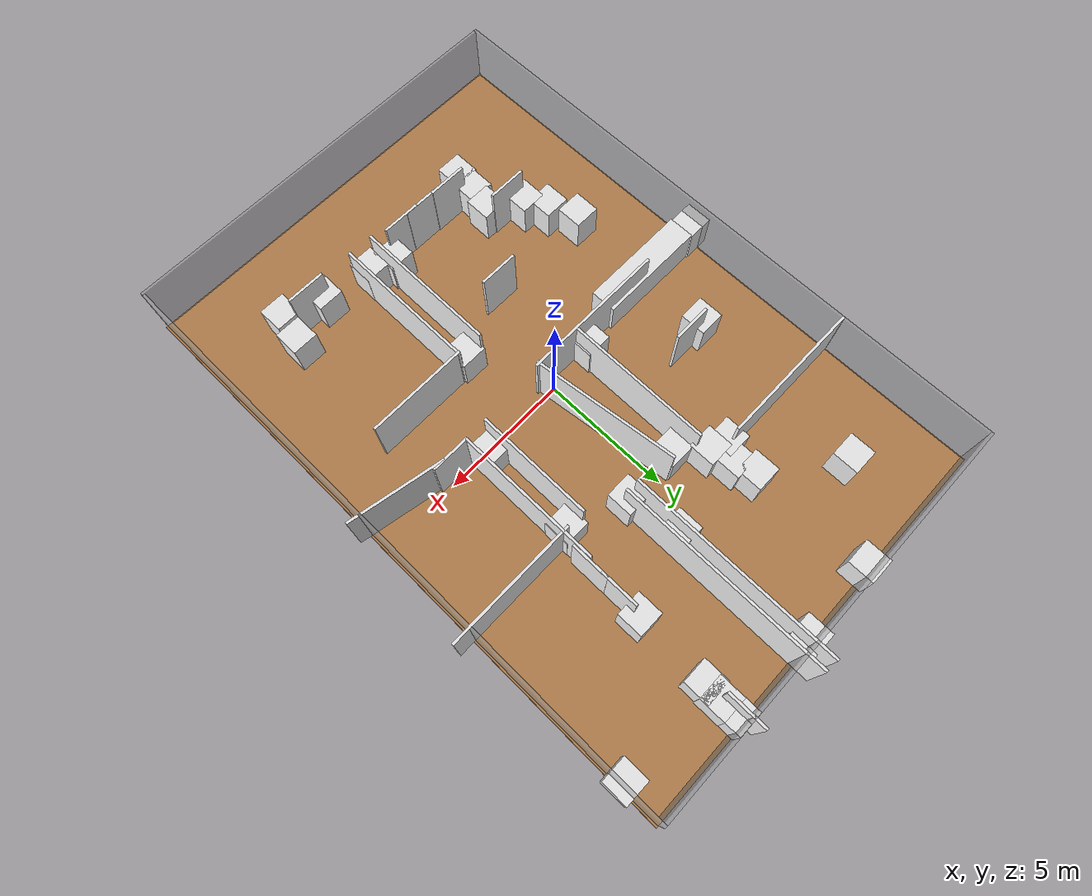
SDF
<sdf version="1.6">
 <world name="default">
  <light name="sun" type="directional">
   <pose>0 0 10 0 -0 0</pose>
   <diffuse>0.8 0.8 0.8 1</diffuse>
   <specular>0.2 0.2 0.2 1</specular>
   <attenuation>
    <range>1000</range>
    <constant>0.9</constant>
    <linear>0.01</linear>
    <quadratic>0.001</quadratic>
   </attenuation>
   <direction>-0.5 0.1 -0.9</direction>
  </light>
  <physics name="default_physics" default="0" type="ode">
   <real_time_update_rate>1000</real_time_update_rate>
   <max_step_size>0.001</max_step_size>
   <real_time_factor>1</real_time_factor>
   <ode>
    <solver>
     <type>quick</type>
     <iters>150</iters>
     <precon_iters>0</precon_iters>
     <sor>1.4</sor>
     <use_dynamic_moi_rescaling>1</use_dynamic_moi_rescaling>
    </solver>
    <constraints>
     <cfm>1e-05</cfm>
     <erp>0.2</erp>
     <contact_max_correcting_vel>2000</contact_max_correcting_vel>
     <contact_surface_layer>0.01</contact_surface_layer>
    </constraints>
   </ode>
  </physics>
  <model name="box_1">
   <pose>0.05 -12.05 1.25 0 -0 0</pose>
   <static>1</static>
   <link name="link">
    <collision name="collision"><geometry><box><size>16.1 0.1 2.5</size></box></geometry></collision>
    <visual name="visual">
     <geometry><box><size>16.1 0.1 2.5</size></box></geometry>
     <material>
      <script><name>Gazebo/GreyTransparent</name><uri>file://media/materials/scripts/gazebo.material</uri></script>
     </material>
    </visual>
   </link>
  </model>
  <model name="box_2">
   <pose>8.05 0.05 1.25 0 -0 0</pose>
   <static>1</static>
   <link name="link">
    <collision name="collision"><geometry><box><size>0.1 24.1 2.5</size></box></geometry></collision>
    <visual name="visual">
     <geometry><box><size>0.1 24.1 2.5</size></box></geometry>
     <material>
      <script><name>Gazebo/GreyTransparent</name><uri>file://media/materials/scripts/gazebo.material</uri></script>
     </material>
    </visual>
   </link>
  </model>
  <model name="box_3">
   <pose>-0.05 12.05 1.25 0 -0 0</pose>
   <static>1</static>
   <link name="link">
    <collision name="collision"><geometry><box><size>16.1 0.1 2.5</size></box></geometry></collision>
    <visual name="visual">
     <geometry><box><size>16.1 0.1 2.5</size></box></geometry>
     <material>
      <script><name>Gazebo/GreyTransparent</name><uri>file://media/materials/scripts/gazebo.material</uri></script>
     </material>
    </visual>
   </link>
  </model>
  <model name="box_4">
   <pose>-8.05 -0.05 1.25 0 -0 0</pose>
   <static>1</static>
   <link name="link">
    <collision name="collision"><geometry><box><size>0.1 24.1 2.5</size></box></geometry></collision>
    <visual name="visual">
     <geometry><box><size>0.1 24.1 2.5</size></box></geometry>
     <material>
      <script><name>Gazebo/GreyTransparent</name><uri>file://media/materials/scripts/gazebo.material</uri></script>
     </material>
    </visual>
   </link>
  </model>
  <model name="box_5">
   <pose>0.075723 0.05653 -0.05 0 -0 0</pose>
   <static>1</static>
   <link name="link">
    <collision name="collision"><geometry><box><size>16.2 24.2 0.1</size></box></geometry></collision>
    <visual name="visual">
     <geometry><box><size>16.2 24.2 0.1</size></box></geometry>
     <material>
      <script><name>Gazebo/WoodFloor</name><uri>file://media/materials/scripts/gazebo.material</uri></script>
     </material>
    </visual>
   </link>
  </model>
  <gravity>0 0 -9.8066</gravity>
  <magnetic_field>6e-06 2.3e-05 -4.2e-05</magnetic_field>
  <atmosphere type="adiabatic"/>
  <scene><ambient>0.4 0.4 0.4 1</ambient><background>0.7 0.7 0.7 1</background><shadows>1</shadows></scene>
  <spherical_coordinates>
   <surface_model>EARTH_WGS84</surface_model>
   <latitude_deg>0</latitude_deg>
   <longitude_deg>0</longitude_deg>
   <elevation>0</elevation>
   <heading_deg>0</heading_deg>
  </spherical_coordinates>
  <model name="box_8_clone">
   <pose>6.73576 -0.524414 1.25 0 0 -0.191358</pose>
   <static>1</static>
   <link name="link">
    <collision name="collision"><geometry><box><size>3.67087 0.1 2.5</size></box></geometry></collision>
    <visual name="visual">
     <geometry><box><size>3.67087 0.1 2.5</size></box></geometry>
     <material>
      <script><name>Gazebo/White</name><uri>file://media/materials/scripts/gazebo.material</uri></script>
     </material>
    </visual>
   </link>
  </model>
  <model name="box_9_clone_clone_0">
   <pose>-3.46298 -8.44795 0.75 0 -0 0</pose>
   <static>1</static>
   <link name="link">
    <collision name="collision"><geometry><box><size>1 1 1.5</size></box></geometry></collision>
    <visual name="visual">
     <geometry><box><size>1 1 1.5</size></box></geometry>
     <material>
      <script><name>Gazebo/White</name><uri>file://media/materials/scripts/gazebo.material</uri></script>
     </material>
    </visual>
   </link>
  </model>
  <model name="box_9_clone_clone_1">
   <pose>-3.40186 -7.56359 0.75 0 -0 0</pose>
   <static>1</static>
   <link name="link">
    <collision name="collision"><geometry><box><size>1 1 1.5</size></box></geometry></collision>
    <visual name="visual">
     <geometry><box><size>1 1 1.5</size></box></geometry>
     <material>
      <script><name>Gazebo/White</name><uri>file://media/materials/scripts/gazebo.material</uri></script>
     </material>
    </visual>
   </link>
  </model>
  <model name="box_9_clone_clone_2">
   <pose>-3.23885 -6.64819 0.75 0 -0 0</pose>
   <static>1</static>
   <link name="link">
    <collision name="collision"><geometry><box><size>1 1 1.5</size></box></geometry></collision>
    <visual name="visual">
     <geometry><box><size>1 1 1.5</size></box></geometry>
     <material>
      <script><name>Gazebo/White</name><uri>file://media/materials/scripts/gazebo.material</uri></script>
     </material>
    </visual>
   </link>
  </model>
  <model name="box_9_clone_clone_3">
   <pose>5.04068 -8.64867 0.75 0 -0 0</pose>
   <static>1</static>
   <link name="link">
    <collision name="collision"><geometry><box><size>1 1 1.5</size></box></geometry></collision>
    <visual name="visual">
     <geometry><box><size>1 1 1.5</size></box></geometry>
     <material>
      <script><name>Gazebo/White</name><uri>file://media/materials/scripts/gazebo.material</uri></script>
     </material>
    </visual>
   </link>
  </model>
  <model name="box_9_clone_clone_4">
   <pose>5.24363 -7.53941 0.75 0 -0 0</pose>
   <static>1</static>
   <link name="link">
    <collision name="collision"><geometry><box><size>1 1 1.5</size></box></geometry></collision>
    <visual name="visual">
     <geometry><box><size>1 1 1.5</size></box></geometry>
     <material>
      <script><name>Gazebo/White</name><uri>file://media/materials/scripts/gazebo.material</uri></script>
     </material>
    </visual>
   </link>
  </model>
  <model name="box_9_clone_clone_7">
   <pose>-2.40815 5.82285 0.75 0 -0 0</pose>
   <static>1</static>
   <link name="link">
    <collision name="collision"><geometry><box><size>1 1 1.5</size></box></geometry></collision>
    <visual name="visual">
     <geometry><box><size>1 1 1.5</size></box></geometry>
     <material>
      <script><name>Gazebo/White</name><uri>file://media/materials/scripts/gazebo.material</uri></script>
     </material>
    </visual>
   </link>
  </model>
  <model name="box_9_clone_clone_8">
   <pose>-2 6.49358 0.75 0 -0 0</pose>
   <static>1</static>
   <link name="link">
    <collision name="collision"><geometry><box><size>1 1 1.5</size></box></geometry></collision>
    <visual name="visual">
     <geometry><box><size>1 1 1.5</size></box></geometry>
     <material>
      <script><name>Gazebo/White</name><uri>file://media/materials/scripts/gazebo.material</uri></script>
     </material>
    </visual>
   </link>
  </model>
  <model name="box_9_clone_clone_9">
   <pose>-2.19565 7.27454 0.75 0 -0 0</pose>
   <static>1</static>
   <link name="link">
    <collision name="collision"><geometry><box><size>1 1 1.5</size></box></geometry></collision>
    <visual name="visual">
     <geometry><box><size>1 1 1.5</size></box></geometry>
     <material>
      <script><name>Gazebo/White</name><uri>file://media/materials/scripts/gazebo.material</uri></script>
     </material>
    </visual>
   </link>
  </model>
  <model name="box_8_clone_clone_13_clone_clone_clone_clone_0">
   <pose>3.88443 -2.57138 1.25 0 -0 0</pose>
   <static>1</static>
   <link name="link">
    <collision name="collision"><geometry><box><size>3.86211 0.1 2.5</size></box></geometry></collision>
    <visual name="visual">
     <geometry><box><size>3.86211 0.1 2.5</size></box></geometry>
     <material>
      <script><name>Gazebo/White</name><uri>file://media/materials/scripts/gazebo.material</uri></script>
     </material>
    </visual>
   </link>
  </model>
  <model name="box_8_clone_clone_11_clone">
   <pose>-1.1954 -3.87817 1.25 0 -0 0</pose>
   <static>1</static>
   <link name="link">
    <collision name="collision"><geometry><box><size>1.5 0.1 2.5</size></box></geometry></collision>
    <visual name="visual">
     <geometry><box><size>1.5 0.1 2.5</size></box></geometry>
     <material>
      <script><name>Gazebo/White</name><uri>file://media/materials/scripts/gazebo.material</uri></script>
     </material>
    </visual>
   </link>
  </model>
  <model name="box_6_clone_clone_3">
   <pose>4.07127 5.47003 1.25 0 -0 0</pose>
   <static>1</static>
   <link name="link">
    <collision name="collision"><geometry><box><size>0.1 1.5 2.5</size></box></geometry></collision>
    <visual name="visual">
     <geometry><box><size>0.1 1.5 2.5</size></box></geometry>
     <material>
      <script><name>Gazebo/White</name><uri>file://media/materials/scripts/gazebo.material</uri></script>
     </material>
    </visual>
   </link>
  </model>
  <model name="box_6_clone_clone_4">
   <pose>4.06892 6.67693 1.25 0 -0 0</pose>
   <static>1</static>
   <link name="link">
    <collision name="collision"><geometry><box><size>0.1 1.5 2.5</size></box></geometry></collision>
    <visual name="visual">
     <geometry><box><size>0.1 1.5 2.5</size></box></geometry>
     <material>
      <script><name>Gazebo/White</name><uri>file://media/materials/scripts/gazebo.material</uri></script>
     </material>
    </visual>
   </link>
  </model>
  <model name="box_8_clone_clone_4_clone_2">
   <pose>-4.30694 2.39293 1.25 0 -0 0</pose>
   <static>1</static>
   <link name="link">
    <collision name="collision"><geometry><box><size>1.5 0.1 2.5</size></box></geometry></collision>
    <visual name="visual">
     <geometry><box><size>1.5 0.1 2.5</size></box></geometry>
     <material>
      <script><name>Gazebo/White</name><uri>file://media/materials/scripts/gazebo.material</uri></script>
     </material>
    </visual>
   </link>
  </model>
  <model name="box_9_clone_clone_7_clone">
   <pose>-5.21616 2.23106 0.75 0 -0 0</pose>
   <static>1</static>
   <link name="link">
    <collision name="collision"><geometry><box><size>1 1 1.5</size></box></geometry></collision>
    <visual name="visual">
     <geometry><box><size>1 1 1.5</size></box></geometry>
     <material>
      <script><name>Gazebo/White</name><uri>file://media/materials/scripts/gazebo.material</uri></script>
     </material>
    </visual>
   </link>
  </model>
  <model name="box_9_clone_clone_7_clone_clone">
   <pose>-7.89766 -0.627489 0.75 0 -0 0</pose>
   <static>1</static>
   <link name="link">
    <collision name="collision"><geometry><box><size>1 1 1.5</size></box></geometry></collision>
    <visual name="visual">
     <geometry><box><size>1 1 1.5</size></box></geometry>
     <material>
      <script><name>Gazebo/White</name><uri>file://media/materials/scripts/gazebo.material</uri></script>
     </material>
    </visual>
   </link>
  </model>
  <model name="box_9_clone_clone_7_clone_clone_3">
   <pose>-5.3619 -3.95424 0.75 0 -0 0</pose>
   <static>1</static>
   <link name="link">
    <collision name="collision"><geometry><box><size>1 1 1.5</size></box></geometry></collision>
    <visual name="visual">
     <geometry><box><size>1 1 1.5</size></box></geometry>
     <material>
      <script><name>Gazebo/White</name><uri>file://media/materials/scripts/gazebo.material</uri></script>
     </material>
    </visual>
   </link>
  </model>
  <model name="box_9_clone_clone_7_clone_clone_4">
   <pose>-4.89443 -5.04481 0.75 0 -0 0</pose>
   <static>1</static>
   <link name="link">
    <collision name="collision"><geometry><box><size>1 1 1.5</size></box></geometry></collision>
    <visual name="visual">
     <geometry><box><size>1 1 1.5</size></box></geometry>
     <material>
      <script><name>Gazebo/White</name><uri>file://media/materials/scripts/gazebo.material</uri></script>
     </material>
    </visual>
   </link>
  </model>
  <model name="box_9_clone_clone_7_clone_clone_5">
   <pose>-4.42171 -5.82067 0.75 0 -0 0</pose>
   <static>1</static>
   <link name="link">
    <collision name="collision"><geometry><box><size>1 1 1.5</size></box></geometry></collision>
    <visual name="visual">
     <geometry><box><size>1 1 1.5</size></box></geometry>
     <material>
      <script><name>Gazebo/White</name><uri>file://media/materials/scripts/gazebo.material</uri></script>
     </material>
    </visual>
   </link>
  </model>
  <model name="box_8_clone_clone_4_clone_2_clone">
   <pose>-3.89284 -6.16269 1.25 0 -0 0</pose>
   <static>1</static>
   <link name="link">
    <collision name="collision"><geometry><box><size>1.5 0.1 2.5</size></box></geometry></collision>
    <visual name="visual">
     <geometry><box><size>1.5 0.1 2.5</size></box></geometry>
     <material>
      <script><name>Gazebo/White</name><uri>file://media/materials/scripts/gazebo.material</uri></script>
     </material>
    </visual>
   </link>
  </model>
  <model name="box_8_clone_clone_4_clone_0_clone">
   <pose>3.96979 -8.18121 1.25 0 -0 0</pose>
   <static>1</static>
   <link name="link">
    <collision name="collision"><geometry><box><size>1.5 0.1 2.5</size></box></geometry></collision>
    <visual name="visual">
     <geometry><box><size>1.5 0.1 2.5</size></box></geometry>
     <material>
      <script><name>Gazebo/White</name><uri>file://media/materials/scripts/gazebo.material</uri></script>
     </material>
    </visual>
   </link>
  </model>
  <model name="box_8_clone_clone_4_clone_0_clone_0">
   <pose>-2.46431 -7.82356 1.25 0 -0 0</pose>
   <static>1</static>
   <link name="link">
    <collision name="collision"><geometry><box><size>1.5 0.1 2.5</size></box></geometry></collision>
    <visual name="visual">
     <geometry><box><size>1.5 0.1 2.5</size></box></geometry>
     <material>
      <script><name>Gazebo/White</name><uri>file://media/materials/scripts/gazebo.material</uri></script>
     </material>
    </visual>
   </link>
  </model>
  <model name="box_8_clone_clone_4_clone_0_clone_1">
   <pose>-1.22633 -7.84729 1.25 0 -0 0</pose>
   <static>1</static>
   <link name="link">
    <collision name="collision"><geometry><box><size>1.5 0.1 2.5</size></box></geometry></collision>
    <visual name="visual">
     <geometry><box><size>1.5 0.1 2.5</size></box></geometry>
     <material>
      <script><name>Gazebo/White</name><uri>file://media/materials/scripts/gazebo.material</uri></script>
     </material>
    </visual>
   </link>
  </model>
  <model name="box_8_clone_clone_4_clone_0_clone_2">
   <pose>-0.238809 -7.86091 1.25 0 -0 0</pose>
   <static>1</static>
   <link name="link">
    <collision name="collision"><geometry><box><size>1.5 0.1 2.5</size></box></geometry></collision>
    <visual name="visual">
     <geometry><box><size>1.5 0.1 2.5</size></box></geometry>
     <material>
      <script><name>Gazebo/White</name><uri>file://media/materials/scripts/gazebo.material</uri></script>
     </material>
    </visual>
   </link>
  </model>
  <model name="box_9_clone_clone_5_clone_2_clone_0">
   <pose>4.02304 7.59814 0.75 0 -0 0</pose>
   <static>1</static>
   <link name="link">
    <collision name="collision"><geometry><box><size>1 1 1.5</size></box></geometry></collision>
    <visual name="visual">
     <geometry><box><size>1 1 1.5</size></box></geometry>
     <material>
      <script><name>Gazebo/White</name><uri>file://media/materials/scripts/gazebo.material</uri></script>
     </material>
    </visual>
   </link>
  </model>
  <model name="box_9_clone_clone_5_clone_2_clone_0_clone">
   <pose>0.652057 -7.5435 0.75 0 -0 0</pose>
   <static>1</static>
   <link name="link">
    <collision name="collision"><geometry><box><size>1 1 1.5</size></box></geometry></collision>
    <visual name="visual">
     <geometry><box><size>1 1 1.5</size></box></geometry>
     <material>
      <script><name>Gazebo/White</name><uri>file://media/materials/scripts/gazebo.material</uri></script>
     </material>
    </visual>
   </link>
  </model>
  <model name="box_9_clone_clone_5_clone_2_clone_0_clone_0">
   <pose>3.49636 -8.18539 0.75 0 -0 0</pose>
   <static>1</static>
   <link name="link">
    <collision name="collision"><geometry><box><size>1 1 1.5</size></box></geometry></collision>
    <visual name="visual">
     <geometry><box><size>1 1 1.5</size></box></geometry>
     <material>
      <script><name>Gazebo/White</name><uri>file://media/materials/scripts/gazebo.material</uri></script>
     </material>
    </visual>
   </link>
  </model>
  <model name="box_6_clone_clone_4_clone">
   <pose>4.07842 11.7768 1.25 0 -0 0</pose>
   <static>1</static>
   <link name="link">
    <collision name="collision"><geometry><box><size>0.1 1.5 2.5</size></box></geometry></collision>
    <visual name="visual">
     <geometry><box><size>0.1 1.5 2.5</size></box></geometry>
     <material>
      <script><name>Gazebo/White</name><uri>file://media/materials/scripts/gazebo.material</uri></script>
     </material>
    </visual>
   </link>
  </model>
  <model name="box_9_clone_clone_5_clone_2_clone_0_clone_1">
   <pose>4.12657 10.422 0.75 0 -0 0</pose>
   <static>1</static>
   <link name="link">
    <collision name="collision"><geometry><box><size>1 1 1.5</size></box></geometry></collision>
    <visual name="visual">
     <geometry><box><size>1 1 1.5</size></box></geometry>
     <material>
      <script><name>Gazebo/White</name><uri>file://media/materials/scripts/gazebo.material</uri></script>
     </material>
    </visual>
   </link>
  </model>
  <model name="box_9_clone_clone_5_clone_2_clone_0_clone_1_clone">
   <pose>4.15601 11.692 0.75 0 -0 0</pose>
   <static>1</static>
   <link name="link">
    <collision name="collision"><geometry><box><size>1 1 1.5</size></box></geometry></collision>
    <visual name="visual">
     <geometry><box><size>1 1 1.5</size></box></geometry>
     <material>
      <script><name>Gazebo/White</name><uri>file://media/materials/scripts/gazebo.material</uri></script>
     </material>
    </visual>
   </link>
  </model>
  <model name="box_9_clone_clone_5_clone_2_clone_0_clone_1_clone_0">
   <pose>4.16263 11.0885 0.75 0 -0 0</pose>
   <static>1</static>
   <link name="link">
    <collision name="collision"><geometry><box><size>1 1 1.5</size></box></geometry></collision>
    <visual name="visual">
     <geometry><box><size>1 1 1.5</size></box></geometry>
     <material>
      <script><name>Gazebo/White</name><uri>file://media/materials/scripts/gazebo.material</uri></script>
     </material>
    </visual>
   </link>
  </model>
  <model name="box_9_clone_clone_7_clone_clone_clone">
   <pose>-5.32159 -0.673379 0.75 0 -0 0</pose>
   <static>1</static>
   <link name="link">
    <collision name="collision"><geometry><box><size>4.25949 1 1.5</size></box></geometry></collision>
    <visual name="visual">
     <geometry><box><size>4.25949 1 1.5</size></box></geometry>
     <material>
      <script><name>Gazebo/White</name><uri>file://media/materials/scripts/gazebo.material</uri></script>
     </material>
    </visual>
   </link>
  </model>
  <model name="box_8_clone_clone_3_clone">
   <pose>6.25131 4.20674 1.25 0 -0 0</pose>
   <static>1</static>
   <link name="link">
    <collision name="collision"><geometry><box><size>5.04273 0.1 2.5</size></box></geometry></collision>
    <visual name="visual">
     <geometry><box><size>5.04273 0.1 2.5</size></box></geometry>
     <material>
      <script><name>Gazebo/White</name><uri>file://media/materials/scripts/gazebo.material</uri></script>
     </material>
    </visual>
   </link>
  </model>
  <model name="box_9_clone_clone_5_clone_2_clone_clone_clone">
   <pose>7.9219 10.5269 0.75 0 -0 0</pose>
   <static>1</static>
   <link name="link">
    <collision name="collision"><geometry><box><size>1 1 1.5</size></box></geometry></collision>
    <visual name="visual">
     <geometry><box><size>1 1 1.5</size></box></geometry>
     <material>
      <script><name>Gazebo/White</name><uri>file://media/materials/scripts/gazebo.material</uri></script>
     </material>
    </visual>
   </link>
  </model>
  <model name="box_6_clone_clone_3_clone">
   <pose>1.59008 8.74293 1.25 0 -0 0</pose>
   <static>1</static>
   <link name="link">
    <collision name="collision"><geometry><box><size>0.1 8.0595 2.5</size></box></geometry></collision>
    <visual name="visual">
     <geometry><box><size>0.1 8.0595 2.5</size></box></geometry>
     <material>
      <script><name>Gazebo/White</name><uri>file://media/materials/scripts/gazebo.material</uri></script>
     </material>
    </visual>
   </link>
  </model>
  <model name="box_9_clone_clone_7_clone_0">
   <pose>1.40531 4.76944 0.75 0 -0 0</pose>
   <static>1</static>
   <link name="link">
    <collision name="collision"><geometry><box><size>1 1 1.5</size></box></geometry></collision>
    <visual name="visual">
     <geometry><box><size>1 1 1.5</size></box></geometry>
     <material>
      <script><name>Gazebo/White</name><uri>file://media/materials/scripts/gazebo.material</uri></script>
     </material>
    </visual>
   </link>
  </model>
  <model name="box_6_clone_clone_3_clone_clone">
   <pose>1.10316 8.78162 1.25 0 -0 0</pose>
   <static>1</static>
   <link name="link">
    <collision name="collision"><geometry><box><size>0.1 8.0595 2.5</size></box></geometry></collision>
    <visual name="visual">
     <geometry><box><size>0.1 8.0595 2.5</size></box></geometry>
     <material>
      <script><name>Gazebo/White</name><uri>file://media/materials/scripts/gazebo.material</uri></script>
     </material>
    </visual>
   </link>
  </model>
  <model name="box_8_clone_clone_3_clone_clone">
   <pose>-5.25901 5.98168 1.25 0 -0 0</pose>
   <static>1</static>
   <link name="link">
    <collision name="collision"><geometry><box><size>5.64962 0.1 2.5</size></box></geometry></collision>
    <visual name="visual">
     <geometry><box><size>5.64962 0.1 2.5</size></box></geometry>
     <material>
      <script><name>Gazebo/White</name><uri>file://media/materials/scripts/gazebo.material</uri></script>
     </material>
    </visual>
   </link>
  </model>
  <model name="box_9_clone_clone_9_clone">
   <pose>-2.30467 11.7929 0.75 0 -0 0</pose>
   <static>1</static>
   <link name="link">
    <collision name="collision"><geometry><box><size>1 1 1.5</size></box></geometry></collision>
    <visual name="visual">
     <geometry><box><size>1 1 1.5</size></box></geometry>
     <material>
      <script><name>Gazebo/White</name><uri>file://media/materials/scripts/gazebo.material</uri></script>
     </material>
    </visual>
   </link>
  </model>
  <model name="box_9_clone_clone_9_clone_clone">
   <pose>-4.86797 9.22215 0.75 0 -0 0</pose>
   <static>1</static>
   <link name="link">
    <collision name="collision"><geometry><box><size>1 1 1.5</size></box></geometry></collision>
    <visual name="visual">
     <geometry><box><size>1 1 1.5</size></box></geometry>
     <material>
      <script><name>Gazebo/White</name><uri>file://media/materials/scripts/gazebo.material</uri></script>
     </material>
    </visual>
   </link>
  </model>
  <model name="box_9_clone_clone_8_clone">
   <pose>0.80417 11.8688 0.75 0 -0 0</pose>
   <static>1</static>
   <link name="link">
    <collision name="collision"><geometry><box><size>1 1 1.5</size></box></geometry></collision>
    <visual name="visual">
     <geometry><box><size>1 1 1.5</size></box></geometry>
     <material>
      <script><name>Gazebo/White</name><uri>file://media/materials/scripts/gazebo.material</uri></script>
     </material>
    </visual>
   </link>
  </model>
  <model name="box_9_clone_clone_8_clone_0">
   <pose>1.07732 6.73552 0.75 0 -0 0</pose>
   <static>1</static>
   <link name="link">
    <collision name="collision"><geometry><box><size>1 1 1.5</size></box></geometry></collision>
    <visual name="visual">
     <geometry><box><size>1 1 1.5</size></box></geometry>
     <material>
      <script><name>Gazebo/White</name><uri>file://media/materials/scripts/gazebo.material</uri></script>
     </material>
    </visual>
   </link>
  </model>
  <model name="box_9_clone_clone_7_clone_1">
   <pose>-1.75575 5.59579 0.75 0 -0 0</pose>
   <static>1</static>
   <link name="link">
    <collision name="collision"><geometry><box><size>1 1 1.5</size></box></geometry></collision>
    <visual name="visual">
     <geometry><box><size>1 1 1.5</size></box></geometry>
     <material>
      <script><name>Gazebo/White</name><uri>file://media/materials/scripts/gazebo.material</uri></script>
     </material>
    </visual>
   </link>
  </model>
  <model name="box_6_clone_clone_3_clone_clone_clone">
   <pose>-1.43846 2.46186 1.25 0 -0 0</pose>
   <static>1</static>
   <link name="link">
    <collision name="collision"><geometry><box><size>0.1 5.60332 2.5</size></box></geometry></collision>
    <visual name="visual">
     <geometry><box><size>0.1 5.60332 2.5</size></box></geometry>
     <material>
      <script><name>Gazebo/White</name><uri>file://media/materials/scripts/gazebo.material</uri></script>
     </material>
    </visual>
   </link>
  </model>
  <model name="box_6_clone_clone_3_clone_clone_clone_clone">
   <pose>3.95757 2.60633 1.25 0 -0 0</pose>
   <static>1</static>
   <link name="link">
    <collision name="collision"><geometry><box><size>0.1 5.60332 2.5</size></box></geometry></collision>
    <visual name="visual">
     <geometry><box><size>0.1 5.60332 2.5</size></box></geometry>
     <material>
      <script><name>Gazebo/White</name><uri>file://media/materials/scripts/gazebo.material</uri></script>
     </material>
    </visual>
   </link>
  </model>
  <model name="box_6_clone_clone_3_clone_clone_clone_clone_0">
   <pose>2.0182 -5.31678 1.25 0 -0 0</pose>
   <static>1</static>
   <link name="link">
    <collision name="collision"><geometry><box><size>0.1 5.60332 2.5</size></box></geometry></collision>
    <visual name="visual">
     <geometry><box><size>0.1 5.60332 2.5</size></box></geometry>
     <material>
      <script><name>Gazebo/White</name><uri>file://media/materials/scripts/gazebo.material</uri></script>
     </material>
    </visual>
   </link>
  </model>
  <model name="box_6_clone_clone_3_clone_clone_clone_clone_0_clone">
   <pose>1.04356 -5.29976 1.25 0 -0 0</pose>
   <static>1</static>
   <link name="link">
    <collision name="collision"><geometry><box><size>0.1 5.60332 2.5</size></box></geometry></collision>
    <visual name="visual">
     <geometry><box><size>0.1 5.60332 2.5</size></box></geometry>
     <material>
      <script><name>Gazebo/White</name><uri>file://media/materials/scripts/gazebo.material</uri></script>
     </material>
    </visual>
   </link>
  </model>
  <model name="box_9_clone_clone_5_clone_2_clone_0_clone_clone">
   <pose>1.51029 -2.90303 0.75 0 -0 0</pose>
   <static>1</static>
   <link name="link">
    <collision name="collision"><geometry><box><size>1 1 1.5</size></box></geometry></collision>
    <visual name="visual">
     <geometry><box><size>1 1 1.5</size></box></geometry>
     <material>
      <script><name>Gazebo/White</name><uri>file://media/materials/scripts/gazebo.material</uri></script>
     </material>
    </visual>
   </link>
  </model>
  <model name="box_8_clone_clone">
   <pose>4.67136 -0.169302 1.25 0 -0 0</pose>
   <static>1</static>
   <link name="link">
    <collision name="collision"><geometry><box><size>1.5 0.1 2.5</size></box></geometry></collision>
    <visual name="visual">
     <geometry><box><size>1.5 0.1 2.5</size></box></geometry>
     <material>
      <script><name>Gazebo/White</name><uri>file://media/materials/scripts/gazebo.material</uri></script>
     </material>
    </visual>
   </link>
  </model>
  <model name="box_9_clone_clone_7_clone_clone_0">
   <pose>-1.82358 -0.068042 0.75 0 -0 0</pose>
   <static>1</static>
   <link name="link">
    <collision name="collision"><geometry><box><size>1 1 1.5</size></box></geometry></collision>
    <visual name="visual">
     <geometry><box><size>1 1 1.5</size></box></geometry>
     <material>
      <script><name>Gazebo/White</name><uri>file://media/materials/scripts/gazebo.material</uri></script>
     </material>
    </visual>
   </link>
  </model>
  <model name="box_9_clone_clone_5_clone_2_clone_0_clone_0_clone">
   <pose>1.56966 -7.808 0.75 0 -0 0</pose>
   <static>1</static>
   <link name="link">
    <collision name="collision"><geometry><box><size>1 1 1.5</size></box></geometry></collision>
    <visual name="visual">
     <geometry><box><size>1 1 1.5</size></box></geometry>
     <material>
      <script><name>Gazebo/White</name><uri>file://media/materials/scripts/gazebo.material</uri></script>
     </material>
    </visual>
   </link>
  </model>
  <model name="box_6_clone_clone_3_clone_clone_clone_clone_clone_clone">
   <pose>3.05375 2.01083 1.25 0 -0 0</pose>
   <static>1</static>
   <link name="link">
    <collision name="collision"><geometry><box><size>0.1 4.48724 2.5</size></box></geometry></collision>
    <visual name="visual">
     <geometry><box><size>0.1 4.48724 2.5</size></box></geometry>
     <material>
      <script><name>Gazebo/White</name><uri>file://media/materials/scripts/gazebo.material</uri></script>
     </material>
    </visual>
   </link>
  </model>
  <model name="box_9_clone_clone_5_clone_2_clone_clone_clone_0_clone">
   <pose>3.53034 3.94247 0.75 0 -0 0</pose>
   <static>1</static>
   <link name="link">
    <collision name="collision"><geometry><box><size>1 1 1.5</size></box></geometry></collision>
    <visual name="visual">
     <geometry><box><size>1 1 1.5</size></box></geometry>
     <material>
      <script><name>Gazebo/White</name><uri>file://media/materials/scripts/gazebo.material</uri></script>
     </material>
    </visual>
   </link>
  </model>
  <model name="box_9_clone_clone_5_clone_2_clone_clone_clone_0_clone_clone">
   <pose>3.50283 0.292409 0.75 0 -0 0</pose>
   <static>1</static>
   <link name="link">
    <collision name="collision"><geometry><box><size>1 1 1.5</size></box></geometry></collision>
    <visual name="visual">
     <geometry><box><size>1 1 1.5</size></box></geometry>
     <material>
      <script><name>Gazebo/White</name><uri>file://media/materials/scripts/gazebo.material</uri></script>
     </material>
    </visual>
   </link>
  </model>
  <model name="box_6_clone_clone_3_clone_clone_clone_clone_1">
   <pose>0.057664 2.35466 1.25 0 -0 0.119614</pose>
   <static>1</static>
   <link name="link">
    <collision name="collision"><geometry><box><size>0.1 5.60332 2.5</size></box></geometry></collision>
    <visual name="visual">
     <geometry><box><size>0.1 5.60332 2.5</size></box></geometry>
     <material>
      <script><name>Gazebo/White</name><uri>file://media/materials/scripts/gazebo.material</uri></script>
     </material>
    </visual>
   </link>
  </model>
  <model name="box_9_clone_clone_8_clone_0_clone">
   <pose>-0.786916 4.69142 0.75 0 -0 0</pose>
   <static>1</static>
   <link name="link">
    <collision name="collision"><geometry><box><size>1 1 1.5</size></box></geometry></collision>
    <visual name="visual">
     <geometry><box><size>1 1 1.5</size></box></geometry>
     <material>
      <script><name>Gazebo/White</name><uri>file://media/materials/scripts/gazebo.material</uri></script>
     </material>
    </visual>
   </link>
  </model>
  <model name="box_8_clone_clone_3_clone_clone_clone">
   <pose>-2.2916 -0.339317 1.25 0 -0 0</pose>
   <static>1</static>
   <link name="link">
    <collision name="collision"><geometry><box><size>5.64962 0.1 2.5</size></box></geometry></collision>
    <visual name="visual">
     <geometry><box><size>5.64962 0.1 2.5</size></box></geometry>
     <material>
      <script><name>Gazebo/White</name><uri>file://media/materials/scripts/gazebo.material</uri></script>
     </material>
    </visual>
   </link>
  </model>
 </world>
</sdf>
